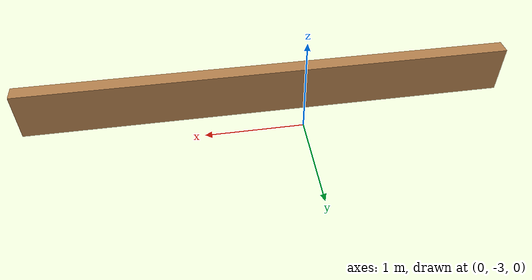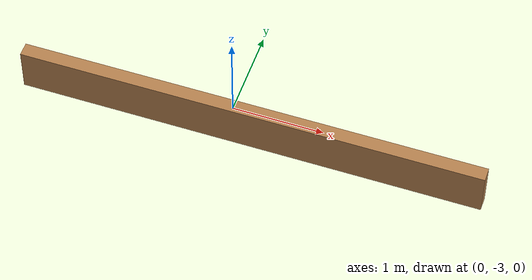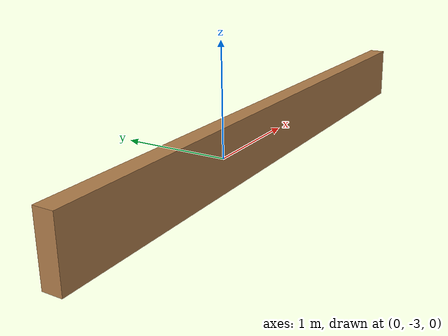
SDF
<?xml version='1.0'?>
<sdf version='1.6'>
  <model name='Wall'>
    <pose frame=''>0.305 -3.34 0 0 -0 0</pose>
    <link name='Wall_3'>
      <collision name='Wall_3_Collision'>
        <geometry>
          <box>
            <size>5 0.15 0.5</size>
          </box>
        </geometry>
        <pose frame=''>0 0 0.25 0 -0 0</pose>
      </collision>
      <visual name='Wall_3_Visual'>
        <pose frame=''>0 0 0.25 0 -0 0</pose>
        <geometry>
          <box>
            <size>5 0.15 0.5</size>
          </box>
        </geometry>
        <material>
          <script>
            <uri>file://media/materials/scripts/gazebo.material</uri>
            <name>Gazebo/Wood</name>
          </script>
          <ambient>1 1 1 1</ambient>
        </material>
        <meta>
          <layer>0</layer>
        </meta>
      </visual>
      <pose frame=''>-0 0 0 0 -0 0</pose>
    </link>
    <static>1</static>
  </model>
</sdf>
